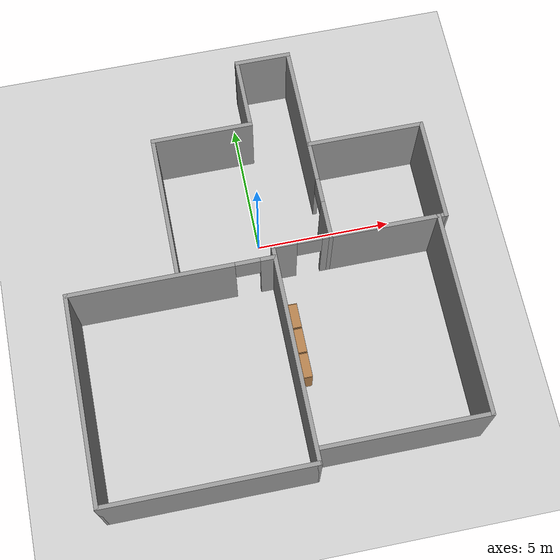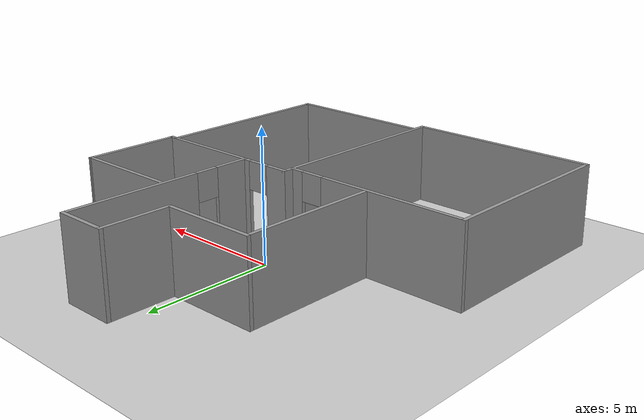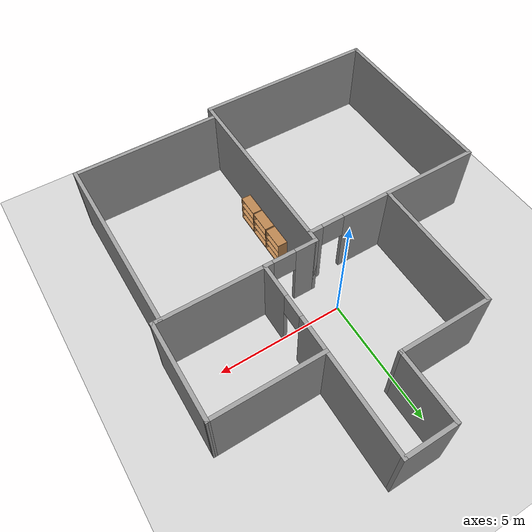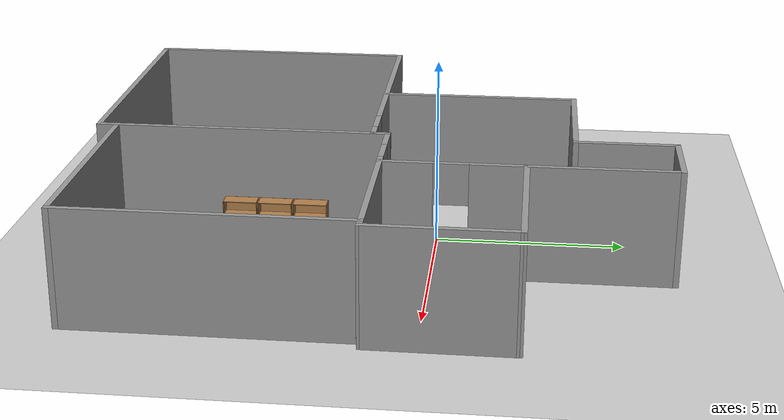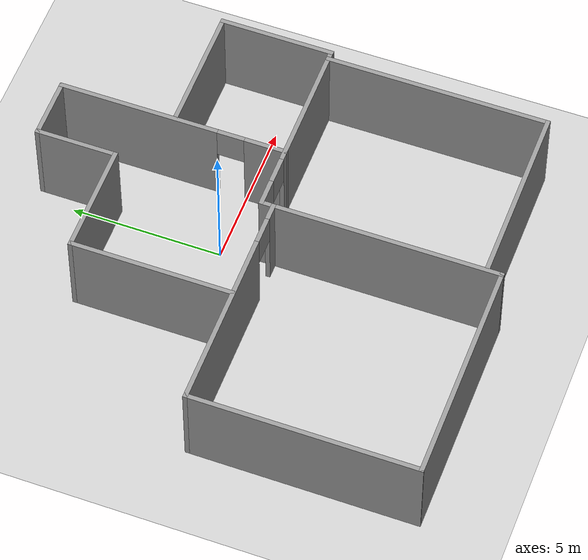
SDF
<sdf version="1.6">
 <world name="default">
  <model name="ground_plane">
   <static>1</static>
   <link name="link">
    <collision name="collision">
     <geometry><plane><normal>0 0 1</normal><size>100 100</size></plane></geometry>
     <surface><friction><ode><mu>100</mu><mu2>50</mu2></ode></friction></surface>
    </collision>
    <visual name="visual">
     <cast_shadows>0</cast_shadows>
     <geometry><plane><normal>0 0 1</normal><size>100 100</size></plane></geometry>
     <material>
      <script><uri>file://media/materials/scripts/gazebo.material</uri><name>Gazebo/Grey</name></script>
     </material>
    </visual>
   </link>
  </model>
  <model name="bh9f_lab_1">
   <pose>-0.27016 -1.43191 0 0 -0 0</pose>
   <link name="Wall_0">
    <pose>-3.1331 -0.253 0 0 -0 3.14159</pose>
    <visual name="Wall_0_Visual_0">
     <pose>-3.46145 0 1.55 0 -0 0</pose>
     <geometry><box><size>0.601096 0.15 3.1</size></box></geometry>
     <material>
      <script><uri>file://media/materials/scripts/gazebo.material</uri><name>Gazebo/Grey</name></script>
      <ambient>1 1 1 1</ambient>
     </material>
    </visual>
    <collision name="Wall_0_Collision_0">
     <geometry><box><size>0.601096 0.15 3.1</size></box></geometry>
     <pose>-3.46145 0 1.55 0 -0 0</pose>
    </collision>
    <visual name="Wall_0_Visual_1">
     <pose>0.750548 0 1.55 0 -0 0</pose>
     <geometry><box><size>6.0229 0.15 3.1</size></box></geometry>
     <material>
      <script><uri>file://media/materials/scripts/gazebo.material</uri><name>Gazebo/Grey</name></script>
      <ambient>1 1 1 1</ambient>
     </material>
    </visual>
    <collision name="Wall_0_Collision_1">
     <geometry><box><size>6.0229 0.15 3.1</size></box></geometry>
     <pose>0.750548 0 1.55 0 -0 0</pose>
    </collision>
    <visual name="Wall_0_Visual_3">
     <pose>-2.7109 0 2.55 0 -0 0</pose>
     <geometry><box><size>0.9 0.15 1.1</size></box></geometry>
     <material>
      <script><uri>file://media/materials/scripts/gazebo.material</uri><name>Gazebo/Grey</name></script>
      <ambient>1 1 1 1</ambient>
     </material>
    </visual>
    <collision name="Wall_0_Collision_3">
     <geometry><box><size>0.9 0.15 1.1</size></box></geometry>
     <pose>-2.7109 0 2.55 0 -0 0</pose>
    </collision>
   </link>
   <link name="Wall_12">
    <collision name="Wall_12_Collision">
     <geometry><box><size>7.44 0.15 3.1</size></box></geometry>
     <pose>0 0 1.55 0 -0 0</pose>
    </collision>
    <visual name="Wall_12_Visual">
     <pose>0 0 1.55 0 -0 0</pose>
     <geometry><box><size>7.44 0.15 3.1</size></box></geometry>
     <material>
      <script><uri>file://media/materials/scripts/gazebo.material</uri><name>Gazebo/Grey</name></script>
      <ambient>1 1 1 1</ambient>
     </material>
    </visual>
    <pose>6.5499 -3.516 0 0 0 -1.5708</pose>
   </link>
   <link name="Wall_14">
    <collision name="Wall_14_Collision">
     <geometry><box><size>6 0.15 3.1</size></box></geometry>
     <pose>0 0 1.55 0 -0 0</pose>
    </collision>
    <visual name="Wall_14_Visual">
     <pose>0 0 1.55 0 -0 0</pose>
     <geometry><box><size>6 0.15 3.1</size></box></geometry>
     <material>
      <script><uri>file://media/materials/scripts/gazebo.material</uri><name>Gazebo/Grey</name></script>
      <ambient>1 1 1 1</ambient>
     </material>
    </visual>
    <pose>3.6249 -7.161 0 0 -0 3.14159</pose>
   </link>
   <link name="Wall_16">
    <collision name="Wall_16_Collision">
     <geometry><box><size>3.83 0.15 3.1</size></box></geometry>
     <pose>0 0 1.55 0 -0 0</pose>
    </collision>
    <visual name="Wall_16_Visual">
     <pose>0 0 1.55 0 -0 0</pose>
     <geometry><box><size>3.83 0.15 3.1</size></box></geometry>
     <material>
      <script><uri>file://media/materials/scripts/gazebo.material</uri><name>Gazebo/Grey</name></script>
      <ambient>1 1 1 1</ambient>
     </material>
    </visual>
    <pose>6.8149 1.975 0 0 -0 1.56808</pose>
   </link>
   <link name="Wall_18">
    <collision name="Wall_18_Collision">
     <geometry><box><size>4.33 0.15 3.1</size></box></geometry>
     <pose>0 0 1.55 0 -0 0</pose>
    </collision>
    <visual name="Wall_18_Visual">
     <pose>0 0 1.55 0 -0 0</pose>
     <geometry><box><size>4.33 0.15 3.1</size></box></geometry>
     <material>
      <script><uri>file://media/materials/scripts/gazebo.material</uri><name>Gazebo/Grey</name></script>
      <ambient>1 1 1 1</ambient>
     </material>
    </visual>
    <pose>4.7299 3.815 0 0 -0 3.14159</pose>
   </link>
   <link name="Wall_2">
    <collision name="Wall_2_Collision">
     <geometry><box><size>7.542 0.15 3.1</size></box></geometry>
     <pose>0 0 1.55 0 -0 0</pose>
    </collision>
    <visual name="Wall_2_Visual">
     <pose>0 0 1.55 0 -0 0</pose>
     <geometry><box><size>7.542 0.15 3.1</size></box></geometry>
     <material>
      <script><uri>file://media/materials/scripts/gazebo.material</uri><name>Gazebo/Grey</name></script>
      <ambient>1 1 1 1</ambient>
     </material>
    </visual>
    <pose>-6.8201 -3.949 0 0 0 -1.5708</pose>
   </link>
   <link name="Wall_20">
    <pose>2.6379 3.89 0 0 -0 1.5708</pose>
    <visual name="Wall_20_Visual_0">
     <pose>-3.11825 0 1.55 0 -0 0</pose>
     <geometry><box><size>1.42351 0.15 3.1</size></box></geometry>
     <material>
      <script><uri>file://media/materials/scripts/gazebo.material</uri><name>Gazebo/Grey</name></script>
      <ambient>1 1 1 1</ambient>
     </material>
    </visual>
    <collision name="Wall_20_Collision_0">
     <geometry><box><size>1.42351 0.15 3.1</size></box></geometry>
     <pose>-3.11825 0 1.55 0 -0 0</pose>
    </collision>
    <visual name="Wall_20_Visual_1">
     <pose>1.16175 0 1.55 0 -0 0</pose>
     <geometry><box><size>5.33649 0.15 3.1</size></box></geometry>
     <material>
      <script><uri>file://media/materials/scripts/gazebo.material</uri><name>Gazebo/Grey</name></script>
      <ambient>1 1 1 1</ambient>
     </material>
    </visual>
    <collision name="Wall_20_Collision_1">
     <geometry><box><size>5.33649 0.15 3.1</size></box></geometry>
     <pose>1.16175 0 1.55 0 -0 0</pose>
    </collision>
    <visual name="Wall_20_Visual_3">
     <pose>-1.95649 0 2.55 0 -0 0</pose>
     <geometry><box><size>0.9 0.15 1.1</size></box></geometry>
     <material>
      <script><uri>file://media/materials/scripts/gazebo.material</uri><name>Gazebo/Grey</name></script>
      <ambient>1 1 1 1</ambient>
     </material>
    </visual>
    <collision name="Wall_20_Collision_3">
     <geometry><box><size>0.9 0.15 1.1</size></box></geometry>
     <pose>-1.95649 0 2.55 0 -0 0</pose>
    </collision>
   </link>
   <link name="Wall_24">
    <collision name="Wall_24_Collision">
     <geometry><box><size>2.089 0.15 3.1</size></box></geometry>
     <pose>0 0 1.55 0 -0 0</pose>
    </collision>
    <visual name="Wall_24_Visual">
     <pose>0 0 1.55 0 -0 0</pose>
     <geometry><box><size>2.089 0.15 3.1</size></box></geometry>
     <material>
      <script><uri>file://media/materials/scripts/gazebo.material</uri><name>Gazebo/Grey</name></script>
      <ambient>1 1 1 1</ambient>
     </material>
    </visual>
    <pose>1.6684 7.645 0 0 -0 3.14159</pose>
   </link>
   <link name="Wall_26">
    <collision name="Wall_26_Collision">
     <geometry><box><size>2.75 0.15 3.1</size></box></geometry>
     <pose>0 0 1.55 0 -0 0</pose>
    </collision>
    <visual name="Wall_26_Visual">
     <pose>0 0 1.55 0 -0 0</pose>
     <geometry><box><size>2.75 0.15 3.1</size></box></geometry>
     <material>
      <script><uri>file://media/materials/scripts/gazebo.material</uri><name>Gazebo/Grey</name></script>
      <ambient>1 1 1 1</ambient>
     </material>
    </visual>
    <pose>0.698898 6.345 0 0 0 -1.5708</pose>
   </link>
   <link name="Wall_28">
    <collision name="Wall_28_Collision">
     <geometry><box><size>3.75 0.15 3.1</size></box></geometry>
     <pose>0 0 1.55 0 -0 0</pose>
    </collision>
    <visual name="Wall_28_Visual">
     <pose>0 0 1.55 0 -0 0</pose>
     <geometry><box><size>3.75 0.15 3.1</size></box></geometry>
     <material>
      <script><uri>file://media/materials/scripts/gazebo.material</uri><name>Gazebo/Grey</name></script>
      <ambient>1 1 1 1</ambient>
     </material>
    </visual>
    <pose>-1.1011 5.045 0 0 -0 3.14159</pose>
   </link>
   <link name="Wall_30">
    <collision name="Wall_30_Collision">
     <geometry><box><size>5.41 0.15 3.1</size></box></geometry>
     <pose>0 0 1.55 0 -0 0</pose>
    </collision>
    <visual name="Wall_30_Visual">
     <pose>0 0 1.55 0 -0 0</pose>
     <geometry><box><size>5.41 0.15 3.1</size></box></geometry>
     <material>
      <script><uri>file://media/materials/scripts/gazebo.material</uri><name>Gazebo/Grey</name></script>
      <ambient>1 1 1 1</ambient>
     </material>
    </visual>
    <pose>-2.9011 2.415 0 0 0 -1.5708</pose>
   </link>
   <link name="Wall_4">
    <collision name="Wall_4_Collision">
     <geometry><box><size>7.53 0.15 3.1</size></box></geometry>
     <pose>0 0 1.55 0 -0 0</pose>
    </collision>
    <visual name="Wall_4_Visual">
     <pose>0 0 1.55 0 -0 0</pose>
     <geometry><box><size>7.53 0.15 3.1</size></box></geometry>
     <material>
      <script><uri>file://media/materials/scripts/gazebo.material</uri><name>Gazebo/Grey</name></script>
      <ambient>1 1 1 1</ambient>
     </material>
    </visual>
    <pose>-3.1301 -7.645 0 0 -0 0</pose>
   </link>
   <link name="Wall_6">
    <collision name="Wall_6_Collision">
     <geometry><box><size>7.93 0.15 3.1</size></box></geometry>
     <pose>0 0 1.55 0 -0 0</pose>
    </collision>
    <visual name="Wall_6_Visual">
     <pose>0 0 1.55 0 -0 0</pose>
     <geometry><box><size>7.93 0.15 3.1</size></box></geometry>
     <material>
      <script><uri>file://media/materials/scripts/gazebo.material</uri><name>Gazebo/Grey</name></script>
      <ambient>1 1 1 1</ambient>
     </material>
    </visual>
    <pose>0.559898 -3.755 0 0 -0 1.5708</pose>
   </link>
   <link name="Wall_8">
    <pose>3.6849 0.135 0 0 -0 0</pose>
    <visual name="Wall_8_Visual_0">
     <pose>-2.73161 0 1.55 0 -0 0</pose>
     <geometry><box><size>0.936778 0.15 3.1</size></box></geometry>
     <material>
      <script><uri>file://media/materials/scripts/gazebo.material</uri><name>Gazebo/Grey</name></script>
      <ambient>1 1 1 1</ambient>
     </material>
    </visual>
    <collision name="Wall_8_Collision_0">
     <geometry><box><size>0.936778 0.15 3.1</size></box></geometry>
     <pose>-2.73161 0 1.55 0 -0 0</pose>
    </collision>
    <visual name="Wall_8_Visual_1">
     <pose>0.918389 0 1.55 0 -0 0</pose>
     <geometry><box><size>4.56322 0.15 3.1</size></box></geometry>
     <material>
      <script><uri>file://media/materials/scripts/gazebo.material</uri><name>Gazebo/Grey</name></script>
      <ambient>1 1 1 1</ambient>
     </material>
    </visual>
    <collision name="Wall_8_Collision_1">
     <geometry><box><size>4.56322 0.15 3.1</size></box></geometry>
     <pose>0.918389 0 1.55 0 -0 0</pose>
    </collision>
    <visual name="Wall_8_Visual_3">
     <pose>-1.81322 0 2.55 0 -0 0</pose>
     <geometry><box><size>0.9 0.15 1.1</size></box></geometry>
     <material>
      <script><uri>file://media/materials/scripts/gazebo.material</uri><name>Gazebo/Grey</name></script>
      <ambient>1 1 1 1</ambient>
     </material>
    </visual>
    <collision name="Wall_8_Collision_3">
     <geometry><box><size>0.9 0.15 1.1</size></box></geometry>
     <pose>-1.81322 0 2.55 0 -0 0</pose>
    </collision>
   </link>
   <static>1</static>
  </model>
  <model name="bookshelf_side2_clone_1">
   <link name="link">
    <pose>0 0 0 0 -0 1.57268</pose>
    <inertial><mass>1</mass></inertial>
    <visual name="visual1">
     <pose>0 0.005 0.6 0 -0 0</pose>
     <geometry><box><size>0.9 0.01 1.2</size></box></geometry>
     <material>
      <script><uri>file://media/materials/scripts/gazebo.material</uri><name>Gazebo/Wood</name></script>
      <ambient>1 1 1 1</ambient>
      <diffuse>1 1 1 1</diffuse>
      <specular>0.2 0.2 0.2 1</specular>
      <emissive>0 0 0 1</emissive>
     </material>
    </visual>
    <visual name="visual2">
     <pose>0.45 -0.195 0.6 0 -0 0</pose>
     <geometry><box><size>0.02 0.4 1.2</size></box></geometry>
     <material>
      <script><uri>file://media/materials/scripts/gazebo.material</uri><name>Gazebo/Wood</name></script>
      <ambient>1 1 1 1</ambient>
      <diffuse>1 1 1 1</diffuse>
      <specular>0.2 0.2 0.2 1</specular>
      <emissive>0 0 0 1</emissive>
     </material>
    </visual>
    <visual name="visual4">
     <pose>0 -0.195 0.03 0 -0 0</pose>
     <geometry><box><size>0.88 0.4 0.06</size></box></geometry>
     <material>
      <script><uri>file://media/materials/scripts/gazebo.material</uri><name>Gazebo/Wood</name></script>
      <ambient>1 1 1 1</ambient>
      <diffuse>1 1 1 1</diffuse>
      <specular>0.2 0.2 0.2 1</specular>
      <emissive>0 0 0 1</emissive>
     </material>
    </visual>
    <visual name="visual3">
     <pose>-0.45 -0.195 0.6 0 -0 0</pose>
     <geometry><box><size>0.02 0.4 1.2</size></box></geometry>
     <material>
      <script><uri>file://media/materials/scripts/gazebo.material</uri><name>Gazebo/Wood</name></script>
      <ambient>1 1 1 1</ambient>
      <diffuse>1 1 1 1</diffuse>
      <specular>0.2 0.2 0.2 1</specular>
      <emissive>0 0 0 1</emissive>
     </material>
    </visual>
    <visual name="visual5">
     <pose>0 -0.195 1.19 0 -0 0</pose>
     <geometry><box><size>0.88 0.4 0.02</size></box></geometry>
     <material>
      <script><uri>file://media/materials/scripts/gazebo.material</uri><name>Gazebo/Wood</name></script>
      <ambient>1 1 1 1</ambient>
      <diffuse>1 1 1 1</diffuse>
      <specular>0.2 0.2 0.2 1</specular>
      <emissive>0 0 0 1</emissive>
     </material>
    </visual>
    <visual name="visual6">
     <pose>0 -0.195 0.43 0 -0 0</pose>
     <geometry><box><size>0.88 0.4 0.02</size></box></geometry>
     <material>
      <script><uri>file://media/materials/scripts/gazebo.material</uri><name>Gazebo/Wood</name></script>
      <ambient>1 1 1 1</ambient>
      <diffuse>1 1 1 1</diffuse>
      <specular>0.2 0.2 0.2 1</specular>
      <emissive>0 0 0 1</emissive>
     </material>
    </visual>
    <visual name="visual7">
     <pose>0 -0.195 0.8 0 -0 0</pose>
     <geometry><box><size>0.88 0.4 0.02</size></box></geometry>
     <material>
      <script><uri>file://media/materials/scripts/gazebo.material</uri><name>Gazebo/Wood</name></script>
      <ambient>1 1 1 1</ambient>
      <diffuse>1 1 1 1</diffuse>
      <specular>0.2 0.2 0.2 1</specular>
      <emissive>0 0 0 1</emissive>
     </material>
    </visual>
    <collision name="right_side">
     <pose>-0.45 -0.195 0.6 0 -0 0</pose>
     <geometry><box><size>0.02 0.4 1.2</size></box></geometry>
     <surface>
      <friction>
       <ode><mu>1</mu><mu2>1</mu2><fdir1>0 0 0</fdir1><slip1>0</slip1><slip2>0</slip2></ode>
       <torsional>
        <coefficient>1</coefficient>
        <patch_radius>0</patch_radius>
        <surface_radius>0</surface_radius>
        <use_patch_radius>1</use_patch_radius>
        <ode><slip>0</slip></ode>
       </torsional>
      </friction>
      <bounce><restitution_coefficient>0</restitution_coefficient><threshold>1e+06</threshold></bounce>
      <contact>
       <collide_without_contact>0</collide_without_contact>
       <collide_without_contact_bitmask>1</collide_without_contact_bitmask>
       <collide_bitmask>1</collide_bitmask>
       <ode>
        <soft_cfm>0</soft_cfm>
        <soft_erp>0.2</soft_erp>
        <kp>1e+13</kp>
        <kd>1</kd>
        <max_vel>0.01</max_vel>
        <min_depth>0</min_depth>
       </ode>
       <bullet>
        <split_impulse>1</split_impulse>
        <split_impulse_penetration_threshold>-0.01</split_impulse_penetration_threshold>
        <soft_cfm>0</soft_cfm>
        <soft_erp>0.2</soft_erp>
        <kp>1e+13</kp>
        <kd>1</kd>
       </bullet>
      </contact>
     </surface>
    </collision>
    <collision name="bottom">
     <pose>0 -0.195 0.03 0 -0 0</pose>
     <geometry><box><size>0.88 0.4 0.06</size></box></geometry>
     <surface>
      <friction>
       <ode><mu>1</mu><mu2>1</mu2><fdir1>0 0 0</fdir1><slip1>0</slip1><slip2>0</slip2></ode>
       <torsional>
        <coefficient>1</coefficient>
        <patch_radius>0</patch_radius>
        <surface_radius>0</surface_radius>
        <use_patch_radius>1</use_patch_radius>
        <ode><slip>0</slip></ode>
       </torsional>
      </friction>
      <bounce><restitution_coefficient>0</restitution_coefficient><threshold>1e+06</threshold></bounce>
      <contact>
       <collide_without_contact>0</collide_without_contact>
       <collide_without_contact_bitmask>1</collide_without_contact_bitmask>
       <collide_bitmask>1</collide_bitmask>
       <ode>
        <soft_cfm>0</soft_cfm>
        <soft_erp>0.2</soft_erp>
        <kp>1e+13</kp>
        <kd>1</kd>
        <max_vel>0.01</max_vel>
        <min_depth>0</min_depth>
       </ode>
       <bullet>
        <split_impulse>1</split_impulse>
        <split_impulse_penetration_threshold>-0.01</split_impulse_penetration_threshold>
        <soft_cfm>0</soft_cfm>
        <soft_erp>0.2</soft_erp>
        <kp>1e+13</kp>
        <kd>1</kd>
       </bullet>
      </contact>
     </surface>
    </collision>
    <collision name="back">
     <pose>0 0.005 0.6 0 -0 0</pose>
     <geometry><box><size>0.9 0.01 1.2</size></box></geometry>
     <surface>
      <friction>
       <ode><mu>1</mu><mu2>1</mu2><fdir1>0 0 0</fdir1><slip1>0</slip1><slip2>0</slip2></ode>
       <torsional>
        <coefficient>1</coefficient>
        <patch_radius>0</patch_radius>
        <surface_radius>0</surface_radius>
        <use_patch_radius>1</use_patch_radius>
        <ode><slip>0</slip></ode>
       </torsional>
      </friction>
      <bounce><restitution_coefficient>0</restitution_coefficient><threshold>1e+06</threshold></bounce>
      <contact>
       <collide_without_contact>0</collide_without_contact>
       <collide_without_contact_bitmask>1</collide_without_contact_bitmask>
       <collide_bitmask>1</collide_bitmask>
       <ode>
        <soft_cfm>0</soft_cfm>
        <soft_erp>0.2</soft_erp>
        <kp>1e+13</kp>
        <kd>1</kd>
        <max_vel>0.01</max_vel>
        <min_depth>0</min_depth>
       </ode>
       <bullet>
        <split_impulse>1</split_impulse>
        <split_impulse_penetration_threshold>-0.01</split_impulse_penetration_threshold>
        <soft_cfm>0</soft_cfm>
        <soft_erp>0.2</soft_erp>
        <kp>1e+13</kp>
        <kd>1</kd>
       </bullet>
      </contact>
     </surface>
    </collision>
    <collision name="left_side">
     <pose>0.45 -0.195 0.6 0 -0 0</pose>
     <geometry><box><size>0.02 0.4 1.2</size></box></geometry>
     <surface>
      <friction>
       <ode><mu>1</mu><mu2>1</mu2><fdir1>0 0 0</fdir1><slip1>0</slip1><slip2>0</slip2></ode>
       <torsional>
        <coefficient>1</coefficient>
        <patch_radius>0</patch_radius>
        <surface_radius>0</surface_radius>
        <use_patch_radius>1</use_patch_radius>
        <ode><slip>0</slip></ode>
       </torsional>
      </friction>
      <bounce><restitution_coefficient>0</restitution_coefficient><threshold>1e+06</threshold></bounce>
      <contact>
       <collide_without_contact>0</collide_without_contact>
       <collide_without_contact_bitmask>1</collide_without_contact_bitmask>
       <collide_bitmask>1</collide_bitmask>
       <ode>
        <soft_cfm>0</soft_cfm>
        <soft_erp>0.2</soft_erp>
        <kp>1e+13</kp>
        <kd>1</kd>
        <max_vel>0.01</max_vel>
        <min_depth>0</min_depth>
       </ode>
       <bullet>
        <split_impulse>1</split_impulse>
        <split_impulse_penetration_threshold>-0.01</split_impulse_penetration_threshold>
        <soft_cfm>0</soft_cfm>
        <soft_erp>0.2</soft_erp>
        <kp>1e+13</kp>
        <kd>1</kd>
       </bullet>
      </contact>
     </surface>
    </collision>
    <collision name="top">
     <pose>0 -0.195 1.19 0 -0 0</pose>
     <geometry><box><size>0.88 0.4 0.02</size></box></geometry>
     <surface>
      <friction>
       <ode><mu>1</mu><mu2>1</mu2><fdir1>0 0 0</fdir1><slip1>0</slip1><slip2>0</slip2></ode>
       <torsional>
        <coefficient>1</coefficient>
        <patch_radius>0</patch_radius>
        <surface_radius>0</surface_radius>
        <use_patch_radius>1</use_patch_radius>
        <ode><slip>0</slip></ode>
       </torsional>
      </friction>
      <bounce><restitution_coefficient>0</restitution_coefficient><threshold>1e+06</threshold></bounce>
      <contact>
       <collide_without_contact>0</collide_without_contact>
       <collide_without_contact_bitmask>1</collide_without_contact_bitmask>
       <collide_bitmask>1</collide_bitmask>
       <ode>
        <soft_cfm>0</soft_cfm>
        <soft_erp>0.2</soft_erp>
        <kp>1e+13</kp>
        <kd>1</kd>
        <max_vel>0.01</max_vel>
        <min_depth>0</min_depth>
       </ode>
       <bullet>
        <split_impulse>1</split_impulse>
        <split_impulse_penetration_threshold>-0.01</split_impulse_penetration_threshold>
        <soft_cfm>0</soft_cfm>
        <soft_erp>0.2</soft_erp>
        <kp>1e+13</kp>
        <kd>1</kd>
       </bullet>
      </contact>
     </surface>
    </collision>
    <collision name="low_shelf">
     <pose>0 -0.195 0.43 0 -0 0</pose>
     <geometry><box><size>0.88 0.4 0.02</size></box></geometry>
     <surface>
      <friction>
       <ode><mu>1</mu><mu2>1</mu2><fdir1>0 0 0</fdir1><slip1>0</slip1><slip2>0</slip2></ode>
       <torsional>
        <coefficient>1</coefficient>
        <patch_radius>0</patch_radius>
        <surface_radius>0</surface_radius>
        <use_patch_radius>1</use_patch_radius>
        <ode><slip>0</slip></ode>
       </torsional>
      </friction>
      <bounce><restitution_coefficient>0</restitution_coefficient><threshold>1e+06</threshold></bounce>
      <contact>
       <collide_without_contact>0</collide_without_contact>
       <collide_without_contact_bitmask>1</collide_without_contact_bitmask>
       <collide_bitmask>1</collide_bitmask>
       <ode>
        <soft_cfm>0</soft_cfm>
        <soft_erp>0.2</soft_erp>
        <kp>1e+13</kp>
        <kd>1</kd>
        <max_vel>0.01</max_vel>
        <min_depth>0</min_depth>
       </ode>
       <bullet>
        <split_impulse>1</split_impulse>
        <split_impulse_penetration_threshold>-0.01</split_impulse_penetration_threshold>
        <soft_cfm>0</soft_cfm>
        <soft_erp>0.2</soft_erp>
        <kp>1e+13</kp>
        <kd>1</kd>
       </bullet>
      </contact>
     </surface>
    </collision>
    <collision name="high_shelf">
     <pose>0 -0.195 0.8 0 -0 0</pose>
     <geometry><box><size>0.88 0.4 0.02</size></box></geometry>
     <surface>
      <friction>
       <ode><mu>1</mu><mu2>1</mu2><fdir1>0 0 0</fdir1><slip1>0</slip1><slip2>0</slip2></ode>
       <torsional>
        <coefficient>1</coefficient>
        <patch_radius>0</patch_radius>
        <surface_radius>0</surface_radius>
        <use_patch_radius>1</use_patch_radius>
        <ode><slip>0</slip></ode>
       </torsional>
      </friction>
      <bounce><restitution_coefficient>0</restitution_coefficient><threshold>1e+06</threshold></bounce>
      <contact>
       <collide_without_contact>0</collide_without_contact>
       <collide_without_contact_bitmask>1</collide_without_contact_bitmask>
       <collide_bitmask>1</collide_bitmask>
       <ode>
        <soft_cfm>0</soft_cfm>
        <soft_erp>0.2</soft_erp>
        <kp>1e+13</kp>
        <kd>1</kd>
        <max_vel>0.01</max_vel>
        <min_depth>0</min_depth>
       </ode>
       <bullet>
        <split_impulse>1</split_impulse>
        <split_impulse_penetration_threshold>-0.01</split_impulse_penetration_threshold>
        <soft_cfm>0</soft_cfm>
        <soft_erp>0.2</soft_erp>
        <kp>1e+13</kp>
        <kd>1</kd>
       </bullet>
      </contact>
     </surface>
    </collision>
   </link>
   <static>1</static>
   <pose>0.44647 -5.21741 0 0 -0 0</pose>
  </model>
  <model name="bookshelf_side2_clone_2">
   <link name="link">
    <pose>0 0 0 0 -0 1.57268</pose>
    <inertial><mass>1</mass></inertial>
    <visual name="visual1">
     <pose>0 0.005 0.6 0 -0 0</pose>
     <geometry><box><size>0.9 0.01 1.2</size></box></geometry>
     <material>
      <script><uri>file://media/materials/scripts/gazebo.material</uri><name>Gazebo/Wood</name></script>
      <ambient>1 1 1 1</ambient>
      <diffuse>1 1 1 1</diffuse>
      <specular>0.2 0.2 0.2 1</specular>
      <emissive>0 0 0 1</emissive>
     </material>
    </visual>
    <visual name="visual2">
     <pose>0.45 -0.195 0.6 0 -0 0</pose>
     <geometry><box><size>0.02 0.4 1.2</size></box></geometry>
     <material>
      <script><uri>file://media/materials/scripts/gazebo.material</uri><name>Gazebo/Wood</name></script>
      <ambient>1 1 1 1</ambient>
      <diffuse>1 1 1 1</diffuse>
      <specular>0.2 0.2 0.2 1</specular>
      <emissive>0 0 0 1</emissive>
     </material>
    </visual>
    <visual name="visual4">
     <pose>0 -0.195 0.03 0 -0 0</pose>
     <geometry><box><size>0.88 0.4 0.06</size></box></geometry>
     <material>
      <script><uri>file://media/materials/scripts/gazebo.material</uri><name>Gazebo/Wood</name></script>
      <ambient>1 1 1 1</ambient>
      <diffuse>1 1 1 1</diffuse>
      <specular>0.2 0.2 0.2 1</specular>
      <emissive>0 0 0 1</emissive>
     </material>
    </visual>
    <visual name="visual3">
     <pose>-0.45 -0.195 0.6 0 -0 0</pose>
     <geometry><box><size>0.02 0.4 1.2</size></box></geometry>
     <material>
      <script><uri>file://media/materials/scripts/gazebo.material</uri><name>Gazebo/Wood</name></script>
      <ambient>1 1 1 1</ambient>
      <diffuse>1 1 1 1</diffuse>
      <specular>0.2 0.2 0.2 1</specular>
      <emissive>0 0 0 1</emissive>
     </material>
    </visual>
    <visual name="visual5">
     <pose>0 -0.195 1.19 0 -0 0</pose>
     <geometry><box><size>0.88 0.4 0.02</size></box></geometry>
     <material>
      <script><uri>file://media/materials/scripts/gazebo.material</uri><name>Gazebo/Wood</name></script>
      <ambient>1 1 1 1</ambient>
      <diffuse>1 1 1 1</diffuse>
      <specular>0.2 0.2 0.2 1</specular>
      <emissive>0 0 0 1</emissive>
     </material>
    </visual>
    <visual name="visual6">
     <pose>0 -0.195 0.43 0 -0 0</pose>
     <geometry><box><size>0.88 0.4 0.02</size></box></geometry>
     <material>
      <script><uri>file://media/materials/scripts/gazebo.material</uri><name>Gazebo/Wood</name></script>
      <ambient>1 1 1 1</ambient>
      <diffuse>1 1 1 1</diffuse>
      <specular>0.2 0.2 0.2 1</specular>
      <emissive>0 0 0 1</emissive>
     </material>
    </visual>
    <visual name="visual7">
     <pose>0 -0.195 0.8 0 -0 0</pose>
     <geometry><box><size>0.88 0.4 0.02</size></box></geometry>
     <material>
      <script><uri>file://media/materials/scripts/gazebo.material</uri><name>Gazebo/Wood</name></script>
      <ambient>1 1 1 1</ambient>
      <diffuse>1 1 1 1</diffuse>
      <specular>0.2 0.2 0.2 1</specular>
      <emissive>0 0 0 1</emissive>
     </material>
    </visual>
    <collision name="right_side">
     <pose>-0.45 -0.195 0.6 0 -0 0</pose>
     <geometry><box><size>0.02 0.4 1.2</size></box></geometry>
     <surface>
      <friction>
       <ode><mu>1</mu><mu2>1</mu2><fdir1>0 0 0</fdir1><slip1>0</slip1><slip2>0</slip2></ode>
       <torsional>
        <coefficient>1</coefficient>
        <patch_radius>0</patch_radius>
        <surface_radius>0</surface_radius>
        <use_patch_radius>1</use_patch_radius>
        <ode><slip>0</slip></ode>
       </torsional>
      </friction>
      <bounce><restitution_coefficient>0</restitution_coefficient><threshold>1e+06</threshold></bounce>
      <contact>
       <collide_without_contact>0</collide_without_contact>
       <collide_without_contact_bitmask>1</collide_without_contact_bitmask>
       <collide_bitmask>1</collide_bitmask>
       <ode>
        <soft_cfm>0</soft_cfm>
        <soft_erp>0.2</soft_erp>
        <kp>1e+13</kp>
        <kd>1</kd>
        <max_vel>0.01</max_vel>
        <min_depth>0</min_depth>
       </ode>
       <bullet>
        <split_impulse>1</split_impulse>
        <split_impulse_penetration_threshold>-0.01</split_impulse_penetration_threshold>
        <soft_cfm>0</soft_cfm>
        <soft_erp>0.2</soft_erp>
        <kp>1e+13</kp>
        <kd>1</kd>
       </bullet>
      </contact>
     </surface>
    </collision>
    <collision name="bottom">
     <pose>0 -0.195 0.03 0 -0 0</pose>
     <geometry><box><size>0.88 0.4 0.06</size></box></geometry>
     <surface>
      <friction>
       <ode><mu>1</mu><mu2>1</mu2><fdir1>0 0 0</fdir1><slip1>0</slip1><slip2>0</slip2></ode>
       <torsional>
        <coefficient>1</coefficient>
        <patch_radius>0</patch_radius>
        <surface_radius>0</surface_radius>
        <use_patch_radius>1</use_patch_radius>
        <ode><slip>0</slip></ode>
       </torsional>
      </friction>
      <bounce><restitution_coefficient>0</restitution_coefficient><threshold>1e+06</threshold></bounce>
      <contact>
       <collide_without_contact>0</collide_without_contact>
       <collide_without_contact_bitmask>1</collide_without_contact_bitmask>
       <collide_bitmask>1</collide_bitmask>
       <ode>
        <soft_cfm>0</soft_cfm>
        <soft_erp>0.2</soft_erp>
        <kp>1e+13</kp>
        <kd>1</kd>
        <max_vel>0.01</max_vel>
        <min_depth>0</min_depth>
       </ode>
       <bullet>
        <split_impulse>1</split_impulse>
        <split_impulse_penetration_threshold>-0.01</split_impulse_penetration_threshold>
        <soft_cfm>0</soft_cfm>
        <soft_erp>0.2</soft_erp>
        <kp>1e+13</kp>
        <kd>1</kd>
       </bullet>
      </contact>
     </surface>
    </collision>
    <collision name="back">
     <pose>0 0.005 0.6 0 -0 0</pose>
     <geometry><box><size>0.9 0.01 1.2</size></box></geometry>
     <surface>
      <friction>
       <ode><mu>1</mu><mu2>1</mu2><fdir1>0 0 0</fdir1><slip1>0</slip1><slip2>0</slip2></ode>
       <torsional>
        <coefficient>1</coefficient>
        <patch_radius>0</patch_radius>
        <surface_radius>0</surface_radius>
        <use_patch_radius>1</use_patch_radius>
        <ode><slip>0</slip></ode>
       </torsional>
      </friction>
      <bounce><restitution_coefficient>0</restitution_coefficient><threshold>1e+06</threshold></bounce>
      <contact>
       <collide_without_contact>0</collide_without_contact>
       <collide_without_contact_bitmask>1</collide_without_contact_bitmask>
       <collide_bitmask>1</collide_bitmask>
       <ode>
        <soft_cfm>0</soft_cfm>
        <soft_erp>0.2</soft_erp>
        <kp>1e+13</kp>
        <kd>1</kd>
        <max_vel>0.01</max_vel>
        <min_depth>0</min_depth>
       </ode>
       <bullet>
        <split_impulse>1</split_impulse>
        <split_impulse_penetration_threshold>-0.01</split_impulse_penetration_threshold>
        <soft_cfm>0</soft_cfm>
        <soft_erp>0.2</soft_erp>
        <kp>1e+13</kp>
        <kd>1</kd>
       </bullet>
      </contact>
     </surface>
    </collision>
    <collision name="left_side">
     <pose>0.45 -0.195 0.6 0 -0 0</pose>
     <geometry><box><size>0.02 0.4 1.2</size></box></geometry>
     <surface>
      <friction>
       <ode><mu>1</mu><mu2>1</mu2><fdir1>0 0 0</fdir1><slip1>0</slip1><slip2>0</slip2></ode>
       <torsional>
        <coefficient>1</coefficient>
        <patch_radius>0</patch_radius>
        <surface_radius>0</surface_radius>
        <use_patch_radius>1</use_patch_radius>
        <ode><slip>0</slip></ode>
       </torsional>
      </friction>
      <bounce><restitution_coefficient>0</restitution_coefficient><threshold>1e+06</threshold></bounce>
      <contact>
       <collide_without_contact>0</collide_without_contact>
       <collide_without_contact_bitmask>1</collide_without_contact_bitmask>
       <collide_bitmask>1</collide_bitmask>
       <ode>
        <soft_cfm>0</soft_cfm>
        <soft_erp>0.2</soft_erp>
        <kp>1e+13</kp>
        <kd>1</kd>
        <max_vel>0.01</max_vel>
        <min_depth>0</min_depth>
       </ode>
       <bullet>
        <split_impulse>1</split_impulse>
        <split_impulse_penetration_threshold>-0.01</split_impulse_penetration_threshold>
        <soft_cfm>0</soft_cfm>
        <soft_erp>0.2</soft_erp>
        <kp>1e+13</kp>
        <kd>1</kd>
       </bullet>
      </contact>
     </surface>
    </collision>
    <collision name="top">
     <pose>0 -0.195 1.19 0 -0 0</pose>
     <geometry><box><size>0.88 0.4 0.02</size></box></geometry>
     <surface>
      <friction>
       <ode><mu>1</mu><mu2>1</mu2><fdir1>0 0 0</fdir1><slip1>0</slip1><slip2>0</slip2></ode>
       <torsional>
        <coefficient>1</coefficient>
        <patch_radius>0</patch_radius>
        <surface_radius>0</surface_radius>
        <use_patch_radius>1</use_patch_radius>
        <ode><slip>0</slip></ode>
       </torsional>
      </friction>
      <bounce><restitution_coefficient>0</restitution_coefficient><threshold>1e+06</threshold></bounce>
      <contact>
       <collide_without_contact>0</collide_without_contact>
       <collide_without_contact_bitmask>1</collide_without_contact_bitmask>
       <collide_bitmask>1</collide_bitmask>
       <ode>
        <soft_cfm>0</soft_cfm>
        <soft_erp>0.2</soft_erp>
        <kp>1e+13</kp>
        <kd>1</kd>
        <max_vel>0.01</max_vel>
        <min_depth>0</min_depth>
       </ode>
       <bullet>
        <split_impulse>1</split_impulse>
        <split_impulse_penetration_threshold>-0.01</split_impulse_penetration_threshold>
        <soft_cfm>0</soft_cfm>
        <soft_erp>0.2</soft_erp>
        <kp>1e+13</kp>
        <kd>1</kd>
       </bullet>
      </contact>
     </surface>
    </collision>
    <collision name="low_shelf">
     <pose>0 -0.195 0.43 0 -0 0</pose>
     <geometry><box><size>0.88 0.4 0.02</size></box></geometry>
     <surface>
      <friction>
       <ode><mu>1</mu><mu2>1</mu2><fdir1>0 0 0</fdir1><slip1>0</slip1><slip2>0</slip2></ode>
       <torsional>
        <coefficient>1</coefficient>
        <patch_radius>0</patch_radius>
        <surface_radius>0</surface_radius>
        <use_patch_radius>1</use_patch_radius>
        <ode><slip>0</slip></ode>
       </torsional>
      </friction>
      <bounce><restitution_coefficient>0</restitution_coefficient><threshold>1e+06</threshold></bounce>
      <contact>
       <collide_without_contact>0</collide_without_contact>
       <collide_without_contact_bitmask>1</collide_without_contact_bitmask>
       <collide_bitmask>1</collide_bitmask>
       <ode>
        <soft_cfm>0</soft_cfm>
        <soft_erp>0.2</soft_erp>
        <kp>1e+13</kp>
        <kd>1</kd>
        <max_vel>0.01</max_vel>
        <min_depth>0</min_depth>
       </ode>
       <bullet>
        <split_impulse>1</split_impulse>
        <split_impulse_penetration_threshold>-0.01</split_impulse_penetration_threshold>
        <soft_cfm>0</soft_cfm>
        <soft_erp>0.2</soft_erp>
        <kp>1e+13</kp>
        <kd>1</kd>
       </bullet>
      </contact>
     </surface>
    </collision>
    <collision name="high_shelf">
     <pose>0 -0.195 0.8 0 -0 0</pose>
     <geometry><box><size>0.88 0.4 0.02</size></box></geometry>
     <surface>
      <friction>
       <ode><mu>1</mu><mu2>1</mu2><fdir1>0 0 0</fdir1><slip1>0</slip1><slip2>0</slip2></ode>
       <torsional>
        <coefficient>1</coefficient>
        <patch_radius>0</patch_radius>
        <surface_radius>0</surface_radius>
        <use_patch_radius>1</use_patch_radius>
        <ode><slip>0</slip></ode>
       </torsional>
      </friction>
      <bounce><restitution_coefficient>0</restitution_coefficient><threshold>1e+06</threshold></bounce>
      <contact>
       <collide_without_contact>0</collide_without_contact>
       <collide_without_contact_bitmask>1</collide_without_contact_bitmask>
       <collide_bitmask>1</collide_bitmask>
       <ode>
        <soft_cfm>0</soft_cfm>
        <soft_erp>0.2</soft_erp>
        <kp>1e+13</kp>
        <kd>1</kd>
        <max_vel>0.01</max_vel>
        <min_depth>0</min_depth>
       </ode>
       <bullet>
        <split_impulse>1</split_impulse>
        <split_impulse_penetration_threshold>-0.01</split_impulse_penetration_threshold>
        <soft_cfm>0</soft_cfm>
        <soft_erp>0.2</soft_erp>
        <kp>1e+13</kp>
        <kd>1</kd>
       </bullet>
      </contact>
     </surface>
    </collision>
   </link>
   <static>1</static>
   <pose>0.44647 -4.27838 0 0 -0 0</pose>
  </model>
  <model name="bookshelf_side2_clone_3">
   <link name="link">
    <pose>0 0 0 0 -0 1.57268</pose>
    <inertial><mass>1</mass></inertial>
    <visual name="visual1">
     <pose>0 0.005 0.6 0 -0 0</pose>
     <geometry><box><size>0.9 0.01 1.2</size></box></geometry>
     <material>
      <script><uri>file://media/materials/scripts/gazebo.material</uri><name>Gazebo/Wood</name></script>
      <ambient>1 1 1 1</ambient>
      <diffuse>1 1 1 1</diffuse>
      <specular>0.2 0.2 0.2 1</specular>
      <emissive>0 0 0 1</emissive>
     </material>
    </visual>
    <visual name="visual2">
     <pose>0.45 -0.195 0.6 0 -0 0</pose>
     <geometry><box><size>0.02 0.4 1.2</size></box></geometry>
     <material>
      <script><uri>file://media/materials/scripts/gazebo.material</uri><name>Gazebo/Wood</name></script>
      <ambient>1 1 1 1</ambient>
      <diffuse>1 1 1 1</diffuse>
      <specular>0.2 0.2 0.2 1</specular>
      <emissive>0 0 0 1</emissive>
     </material>
    </visual>
    <visual name="visual4">
     <pose>0 -0.195 0.03 0 -0 0</pose>
     <geometry><box><size>0.88 0.4 0.06</size></box></geometry>
     <material>
      <script><uri>file://media/materials/scripts/gazebo.material</uri><name>Gazebo/Wood</name></script>
      <ambient>1 1 1 1</ambient>
      <diffuse>1 1 1 1</diffuse>
      <specular>0.2 0.2 0.2 1</specular>
      <emissive>0 0 0 1</emissive>
     </material>
    </visual>
    <visual name="visual3">
     <pose>-0.45 -0.195 0.6 0 -0 0</pose>
     <geometry><box><size>0.02 0.4 1.2</size></box></geometry>
     <material>
      <script><uri>file://media/materials/scripts/gazebo.material</uri><name>Gazebo/Wood</name></script>
      <ambient>1 1 1 1</ambient>
      <diffuse>1 1 1 1</diffuse>
      <specular>0.2 0.2 0.2 1</specular>
      <emissive>0 0 0 1</emissive>
     </material>
    </visual>
    <visual name="visual5">
     <pose>0 -0.195 1.19 0 -0 0</pose>
     <geometry><box><size>0.88 0.4 0.02</size></box></geometry>
     <material>
      <script><uri>file://media/materials/scripts/gazebo.material</uri><name>Gazebo/Wood</name></script>
      <ambient>1 1 1 1</ambient>
      <diffuse>1 1 1 1</diffuse>
      <specular>0.2 0.2 0.2 1</specular>
      <emissive>0 0 0 1</emissive>
     </material>
    </visual>
    <visual name="visual6">
     <pose>0 -0.195 0.43 0 -0 0</pose>
     <geometry><box><size>0.88 0.4 0.02</size></box></geometry>
     <material>
      <script><uri>file://media/materials/scripts/gazebo.material</uri><name>Gazebo/Wood</name></script>
      <ambient>1 1 1 1</ambient>
      <diffuse>1 1 1 1</diffuse>
      <specular>0.2 0.2 0.2 1</specular>
      <emissive>0 0 0 1</emissive>
     </material>
    </visual>
    <visual name="visual7">
     <pose>0 -0.195 0.8 0 -0 0</pose>
     <geometry><box><size>0.88 0.4 0.02</size></box></geometry>
     <material>
      <script><uri>file://media/materials/scripts/gazebo.material</uri><name>Gazebo/Wood</name></script>
      <ambient>1 1 1 1</ambient>
      <diffuse>1 1 1 1</diffuse>
      <specular>0.2 0.2 0.2 1</specular>
      <emissive>0 0 0 1</emissive>
     </material>
    </visual>
    <collision name="right_side">
     <pose>-0.45 -0.195 0.6 0 -0 0</pose>
     <geometry><box><size>0.02 0.4 1.2</size></box></geometry>
     <surface>
      <friction>
       <ode><mu>1</mu><mu2>1</mu2><fdir1>0 0 0</fdir1><slip1>0</slip1><slip2>0</slip2></ode>
       <torsional>
        <coefficient>1</coefficient>
        <patch_radius>0</patch_radius>
        <surface_radius>0</surface_radius>
        <use_patch_radius>1</use_patch_radius>
        <ode><slip>0</slip></ode>
       </torsional>
      </friction>
      <bounce><restitution_coefficient>0</restitution_coefficient><threshold>1e+06</threshold></bounce>
      <contact>
       <collide_without_contact>0</collide_without_contact>
       <collide_without_contact_bitmask>1</collide_without_contact_bitmask>
       <collide_bitmask>1</collide_bitmask>
       <ode>
        <soft_cfm>0</soft_cfm>
        <soft_erp>0.2</soft_erp>
        <kp>1e+13</kp>
        <kd>1</kd>
        <max_vel>0.01</max_vel>
        <min_depth>0</min_depth>
       </ode>
       <bullet>
        <split_impulse>1</split_impulse>
        <split_impulse_penetration_threshold>-0.01</split_impulse_penetration_threshold>
        <soft_cfm>0</soft_cfm>
        <soft_erp>0.2</soft_erp>
        <kp>1e+13</kp>
        <kd>1</kd>
       </bullet>
      </contact>
     </surface>
    </collision>
    <collision name="bottom">
     <pose>0 -0.195 0.03 0 -0 0</pose>
     <geometry><box><size>0.88 0.4 0.06</size></box></geometry>
     <surface>
      <friction>
       <ode><mu>1</mu><mu2>1</mu2><fdir1>0 0 0</fdir1><slip1>0</slip1><slip2>0</slip2></ode>
       <torsional>
        <coefficient>1</coefficient>
        <patch_radius>0</patch_radius>
        <surface_radius>0</surface_radius>
        <use_patch_radius>1</use_patch_radius>
        <ode><slip>0</slip></ode>
       </torsional>
      </friction>
      <bounce><restitution_coefficient>0</restitution_coefficient><threshold>1e+06</threshold></bounce>
      <contact>
       <collide_without_contact>0</collide_without_contact>
       <collide_without_contact_bitmask>1</collide_without_contact_bitmask>
       <collide_bitmask>1</collide_bitmask>
       <ode>
        <soft_cfm>0</soft_cfm>
        <soft_erp>0.2</soft_erp>
        <kp>1e+13</kp>
        <kd>1</kd>
        <max_vel>0.01</max_vel>
        <min_depth>0</min_depth>
       </ode>
       <bullet>
        <split_impulse>1</split_impulse>
        <split_impulse_penetration_threshold>-0.01</split_impulse_penetration_threshold>
        <soft_cfm>0</soft_cfm>
        <soft_erp>0.2</soft_erp>
        <kp>1e+13</kp>
        <kd>1</kd>
       </bullet>
      </contact>
     </surface>
    </collision>
    <collision name="back">
     <pose>0 0.005 0.6 0 -0 0</pose>
     <geometry><box><size>0.9 0.01 1.2</size></box></geometry>
     <surface>
      <friction>
       <ode><mu>1</mu><mu2>1</mu2><fdir1>0 0 0</fdir1><slip1>0</slip1><slip2>0</slip2></ode>
       <torsional>
        <coefficient>1</coefficient>
        <patch_radius>0</patch_radius>
        <surface_radius>0</surface_radius>
        <use_patch_radius>1</use_patch_radius>
        <ode><slip>0</slip></ode>
       </torsional>
      </friction>
      <bounce><restitution_coefficient>0</restitution_coefficient><threshold>1e+06</threshold></bounce>
      <contact>
       <collide_without_contact>0</collide_without_contact>
       <collide_without_contact_bitmask>1</collide_without_contact_bitmask>
       <collide_bitmask>1</collide_bitmask>
       <ode>
        <soft_cfm>0</soft_cfm>
        <soft_erp>0.2</soft_erp>
        <kp>1e+13</kp>
        <kd>1</kd>
        <max_vel>0.01</max_vel>
        <min_depth>0</min_depth>
       </ode>
       <bullet>
        <split_impulse>1</split_impulse>
        <split_impulse_penetration_threshold>-0.01</split_impulse_penetration_threshold>
        <soft_cfm>0</soft_cfm>
        <soft_erp>0.2</soft_erp>
        <kp>1e+13</kp>
        <kd>1</kd>
       </bullet>
      </contact>
     </surface>
    </collision>
    <collision name="left_side">
     <pose>0.45 -0.195 0.6 0 -0 0</pose>
     <geometry><box><size>0.02 0.4 1.2</size></box></geometry>
     <surface>
      <friction>
       <ode><mu>1</mu><mu2>1</mu2><fdir1>0 0 0</fdir1><slip1>0</slip1><slip2>0</slip2></ode>
       <torsional>
        <coefficient>1</coefficient>
        <patch_radius>0</patch_radius>
        <surface_radius>0</surface_radius>
        <use_patch_radius>1</use_patch_radius>
        <ode><slip>0</slip></ode>
       </torsional>
      </friction>
      <bounce><restitution_coefficient>0</restitution_coefficient><threshold>1e+06</threshold></bounce>
      <contact>
       <collide_without_contact>0</collide_without_contact>
       <collide_without_contact_bitmask>1</collide_without_contact_bitmask>
       <collide_bitmask>1</collide_bitmask>
       <ode>
        <soft_cfm>0</soft_cfm>
        <soft_erp>0.2</soft_erp>
        <kp>1e+13</kp>
        <kd>1</kd>
        <max_vel>0.01</max_vel>
        <min_depth>0</min_depth>
       </ode>
       <bullet>
        <split_impulse>1</split_impulse>
        <split_impulse_penetration_threshold>-0.01</split_impulse_penetration_threshold>
        <soft_cfm>0</soft_cfm>
        <soft_erp>0.2</soft_erp>
        <kp>1e+13</kp>
        <kd>1</kd>
       </bullet>
      </contact>
     </surface>
    </collision>
    <collision name="top">
     <pose>0 -0.195 1.19 0 -0 0</pose>
     <geometry><box><size>0.88 0.4 0.02</size></box></geometry>
     <surface>
      <friction>
       <ode><mu>1</mu><mu2>1</mu2><fdir1>0 0 0</fdir1><slip1>0</slip1><slip2>0</slip2></ode>
       <torsional>
        <coefficient>1</coefficient>
        <patch_radius>0</patch_radius>
        <surface_radius>0</surface_radius>
        <use_patch_radius>1</use_patch_radius>
        <ode><slip>0</slip></ode>
       </torsional>
      </friction>
      <bounce><restitution_coefficient>0</restitution_coefficient><threshold>1e+06</threshold></bounce>
      <contact>
       <collide_without_contact>0</collide_without_contact>
       <collide_without_contact_bitmask>1</collide_without_contact_bitmask>
       <collide_bitmask>1</collide_bitmask>
       <ode>
        <soft_cfm>0</soft_cfm>
        <soft_erp>0.2</soft_erp>
        <kp>1e+13</kp>
        <kd>1</kd>
        <max_vel>0.01</max_vel>
        <min_depth>0</min_depth>
       </ode>
       <bullet>
        <split_impulse>1</split_impulse>
        <split_impulse_penetration_threshold>-0.01</split_impulse_penetration_threshold>
        <soft_cfm>0</soft_cfm>
        <soft_erp>0.2</soft_erp>
        <kp>1e+13</kp>
        <kd>1</kd>
       </bullet>
      </contact>
     </surface>
    </collision>
    <collision name="low_shelf">
     <pose>0 -0.195 0.43 0 -0 0</pose>
     <geometry><box><size>0.88 0.4 0.02</size></box></geometry>
     <surface>
      <friction>
       <ode><mu>1</mu><mu2>1</mu2><fdir1>0 0 0</fdir1><slip1>0</slip1><slip2>0</slip2></ode>
       <torsional>
        <coefficient>1</coefficient>
        <patch_radius>0</patch_radius>
        <surface_radius>0</surface_radius>
        <use_patch_radius>1</use_patch_radius>
        <ode><slip>0</slip></ode>
       </torsional>
      </friction>
      <bounce><restitution_coefficient>0</restitution_coefficient><threshold>1e+06</threshold></bounce>
      <contact>
       <collide_without_contact>0</collide_without_contact>
       <collide_without_contact_bitmask>1</collide_without_contact_bitmask>
       <collide_bitmask>1</collide_bitmask>
       <ode>
        <soft_cfm>0</soft_cfm>
        <soft_erp>0.2</soft_erp>
        <kp>1e+13</kp>
        <kd>1</kd>
        <max_vel>0.01</max_vel>
        <min_depth>0</min_depth>
       </ode>
       <bullet>
        <split_impulse>1</split_impulse>
        <split_impulse_penetration_threshold>-0.01</split_impulse_penetration_threshold>
        <soft_cfm>0</soft_cfm>
        <soft_erp>0.2</soft_erp>
        <kp>1e+13</kp>
        <kd>1</kd>
       </bullet>
      </contact>
     </surface>
    </collision>
    <collision name="high_shelf">
     <pose>0 -0.195 0.8 0 -0 0</pose>
     <geometry><box><size>0.88 0.4 0.02</size></box></geometry>
     <surface>
      <friction>
       <ode><mu>1</mu><mu2>1</mu2><fdir1>0 0 0</fdir1><slip1>0</slip1><slip2>0</slip2></ode>
       <torsional>
        <coefficient>1</coefficient>
        <patch_radius>0</patch_radius>
        <surface_radius>0</surface_radius>
        <use_patch_radius>1</use_patch_radius>
        <ode><slip>0</slip></ode>
       </torsional>
      </friction>
      <bounce><restitution_coefficient>0</restitution_coefficient><threshold>1e+06</threshold></bounce>
      <contact>
       <collide_without_contact>0</collide_without_contact>
       <collide_without_contact_bitmask>1</collide_without_contact_bitmask>
       <collide_bitmask>1</collide_bitmask>
       <ode>
        <soft_cfm>0</soft_cfm>
        <soft_erp>0.2</soft_erp>
        <kp>1e+13</kp>
        <kd>1</kd>
        <max_vel>0.01</max_vel>
        <min_depth>0</min_depth>
       </ode>
       <bullet>
        <split_impulse>1</split_impulse>
        <split_impulse_penetration_threshold>-0.01</split_impulse_penetration_threshold>
        <soft_cfm>0</soft_cfm>
        <soft_erp>0.2</soft_erp>
        <kp>1e+13</kp>
        <kd>1</kd>
       </bullet>
      </contact>
     </surface>
    </collision>
   </link>
   <static>1</static>
   <pose>0.44647 -3.3338 0 0 -0 0</pose>
  </model>
 </world>
</sdf>
